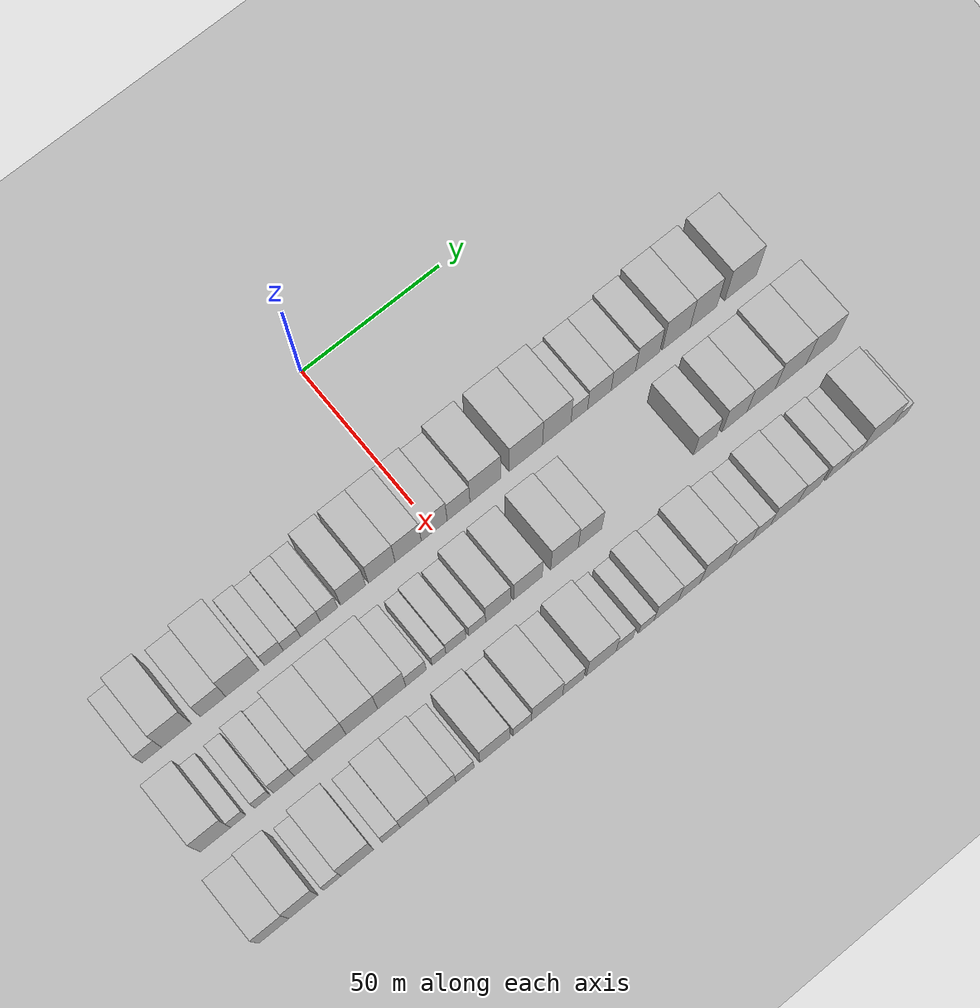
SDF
<sdf version="1.6">
 <world name="default">
  <include><name>ground_plane_1</name><uri>model://HANNAS_ground_plane</uri></include>
  <include>
   <name>ground_plane_2</name>
   <uri>model://HANNAS_ground_plane</uri>
   <pose>100 0 0  0 0 0</pose>
  </include>
  <model name="building_21">
   <static>1</static>
   <pose>50.0000 -98.5561 0 0.000000 0.000000 0.000000</pose>
   <link name="link">
    <pose>0 0 7.50 0 0 0</pose>
    <collision name="collision"><geometry><box><size>20.0000 6.6615 15.0000</size></box></geometry></collision>
    <visual name="visual">
     <cast_shadows>0</cast_shadows>
     <geometry><box><size>20.0000 6.6615 15.0000</size></box></geometry>
     <material>
      <script>
       <uri>model://HANNAS_wall/materials/scripts</uri>
       <uri>model://HANNAS_wall/materials/textures</uri>
       <name>vrc/HANNAS_wall</name>
      </script>
     </material>
    </visual>
   </link>
  </model>
  <model name="building_22">
   <static>1</static>
   <pose>50.0000 -90.1369 0 0.000000 0.000000 0.000000</pose>
   <link name="link">
    <pose>0 0 12.00 0 0 0</pose>
    <collision name="collision"><geometry><box><size>20.0000 10.1769 24.0000</size></box></geometry></collision>
    <visual name="visual">
     <cast_shadows>0</cast_shadows>
     <geometry><box><size>20.0000 10.1769 24.0000</size></box></geometry>
     <material>
      <script>
       <uri>model://HANNAS_wall/materials/scripts</uri>
       <uri>model://HANNAS_wall/materials/textures</uri>
       <name>vrc/HANNAS_wall</name>
      </script>
     </material>
    </visual>
   </link>
  </model>
  <model name="building_23">
   <static>1</static>
   <pose>50.0000 -77.6514 0 0.000000 0.000000 0.000000</pose>
   <link name="link">
    <pose>0 0 9.00 0 0 0</pose>
    <collision name="collision"><geometry><box><size>20.0000 8.7939 18.0000</size></box></geometry></collision>
    <visual name="visual">
     <cast_shadows>0</cast_shadows>
     <geometry><box><size>20.0000 8.7939 18.0000</size></box></geometry>
     <material>
      <script>
       <uri>model://HANNAS_wall/materials/scripts</uri>
       <uri>model://HANNAS_wall/materials/textures</uri>
       <name>vrc/HANNAS_wall</name>
      </script>
     </material>
    </visual>
   </link>
  </model>
  <model name="building_24">
   <static>1</static>
   <pose>50.0000 -67.5716 0 0.000000 0.000000 0.000000</pose>
   <link name="link">
    <pose>0 0 12.00 0 0 0</pose>
    <collision name="collision"><geometry><box><size>20.0000 11.3658 24.0000</size></box></geometry></collision>
    <visual name="visual">
     <cast_shadows>0</cast_shadows>
     <geometry><box><size>20.0000 11.3658 24.0000</size></box></geometry>
     <material>
      <script>
       <uri>model://HANNAS_wall/materials/scripts</uri>
       <uri>model://HANNAS_wall/materials/textures</uri>
       <name>vrc/HANNAS_wall</name>
      </script>
     </material>
    </visual>
   </link>
  </model>
  <model name="building_25">
   <static>1</static>
   <pose>50.0000 -56.5981 0 0.000000 0.000000 0.000000</pose>
   <link name="link">
    <pose>0 0 7.50 0 0 0</pose>
    <collision name="collision"><geometry><box><size>20.0000 6.5810 15.0000</size></box></geometry></collision>
    <visual name="visual">
     <cast_shadows>0</cast_shadows>
     <geometry><box><size>20.0000 6.5810 15.0000</size></box></geometry>
     <material>
      <script>
       <uri>model://HANNAS_wall/materials/scripts</uri>
       <uri>model://HANNAS_wall/materials/textures</uri>
       <name>vrc/HANNAS_wall</name>
      </script>
     </material>
    </visual>
   </link>
  </model>
  <model name="building_26">
   <static>1</static>
   <pose>50.0000 -50.3149 0 0.000000 0.000000 0.000000</pose>
   <link name="link">
    <pose>0 0 6.00 0 0 0</pose>
    <collision name="collision"><geometry><box><size>20.0000 5.9853 12.0000</size></box></geometry></collision>
    <visual name="visual">
     <cast_shadows>0</cast_shadows>
     <geometry><box><size>20.0000 5.9853 12.0000</size></box></geometry>
     <material>
      <script>
       <uri>model://HANNAS_wall/materials/scripts</uri>
       <uri>model://HANNAS_wall/materials/textures</uri>
       <name>vrc/HANNAS_wall</name>
      </script>
     </material>
    </visual>
   </link>
  </model>
  <model name="building_27">
   <static>1</static>
   <pose>50.0000 -43.8723 0 0.000000 0.000000 0.000000</pose>
   <link name="link">
    <pose>0 0 7.50 0 0 0</pose>
    <collision name="collision"><geometry><box><size>20.0000 6.9000 15.0000</size></box></geometry></collision>
    <visual name="visual">
     <cast_shadows>0</cast_shadows>
     <geometry><box><size>20.0000 6.9000 15.0000</size></box></geometry>
     <material>
      <script>
       <uri>model://HANNAS_wall/materials/scripts</uri>
       <uri>model://HANNAS_wall/materials/textures</uri>
       <name>vrc/HANNAS_wall</name>
      </script>
     </material>
    </visual>
   </link>
  </model>
  <model name="building_28">
   <static>1</static>
   <pose>50.0000 -37.3803 0 0.000000 0.000000 0.000000</pose>
   <link name="link">
    <pose>0 0 7.50 0 0 0</pose>
    <collision name="collision"><geometry><box><size>20.0000 6.0840 15.0000</size></box></geometry></collision>
    <visual name="visual">
     <cast_shadows>0</cast_shadows>
     <geometry><box><size>20.0000 6.0840 15.0000</size></box></geometry>
     <material>
      <script>
       <uri>model://HANNAS_wall/materials/scripts</uri>
       <uri>model://HANNAS_wall/materials/textures</uri>
       <name>vrc/HANNAS_wall</name>
      </script>
     </material>
    </visual>
   </link>
  </model>
  <model name="building_29">
   <static>1</static>
   <pose>50.0000 -28.9255 0 0.000000 0.000000 0.000000</pose>
   <link name="link">
    <pose>0 0 10.50 0 0 0</pose>
    <collision name="collision"><geometry><box><size>20.0000 8.8257 21.0000</size></box></geometry></collision>
    <visual name="visual">
     <cast_shadows>0</cast_shadows>
     <geometry><box><size>20.0000 8.8257 21.0000</size></box></geometry>
     <material>
      <script>
       <uri>model://HANNAS_wall/materials/scripts</uri>
       <uri>model://HANNAS_wall/materials/textures</uri>
       <name>vrc/HANNAS_wall</name>
      </script>
     </material>
    </visual>
   </link>
  </model>
  <model name="building_30">
   <static>1</static>
   <pose>50.0000 -18.8104 0 0.000000 0.000000 0.000000</pose>
   <link name="link">
    <pose>0 0 10.50 0 0 0</pose>
    <collision name="collision"><geometry><box><size>20.0000 9.4045 21.0000</size></box></geometry></collision>
    <visual name="visual">
     <cast_shadows>0</cast_shadows>
     <geometry><box><size>20.0000 9.4045 21.0000</size></box></geometry>
     <material>
      <script>
       <uri>model://HANNAS_wall/materials/scripts</uri>
       <uri>model://HANNAS_wall/materials/textures</uri>
       <name>vrc/HANNAS_wall</name>
      </script>
     </material>
    </visual>
   </link>
  </model>
  <model name="building_31">
   <static>1</static>
   <pose>50.0000 -9.4515 0 0.000000 0.000000 0.000000</pose>
   <link name="link">
    <pose>0 0 10.50 0 0 0</pose>
    <collision name="collision"><geometry><box><size>20.0000 9.3133 21.0000</size></box></geometry></collision>
    <visual name="visual">
     <cast_shadows>0</cast_shadows>
     <geometry><box><size>20.0000 9.3133 21.0000</size></box></geometry>
     <material>
      <script>
       <uri>model://HANNAS_wall/materials/scripts</uri>
       <uri>model://HANNAS_wall/materials/textures</uri>
       <name>vrc/HANNAS_wall</name>
      </script>
     </material>
    </visual>
   </link>
  </model>
  <model name="building_32">
   <static>1</static>
   <pose>50.0000 -0.1966 0 0.000000 0.000000 0.000000</pose>
   <link name="link">
    <pose>0 0 10.50 0 0 0</pose>
    <collision name="collision"><geometry><box><size>20.0000 9.1965 21.0000</size></box></geometry></collision>
    <visual name="visual">
     <cast_shadows>0</cast_shadows>
     <geometry><box><size>20.0000 9.1965 21.0000</size></box></geometry>
     <material>
      <script>
       <uri>model://HANNAS_wall/materials/scripts</uri>
       <uri>model://HANNAS_wall/materials/textures</uri>
       <name>vrc/HANNAS_wall</name>
      </script>
     </material>
    </visual>
   </link>
  </model>
  <model name="building_33">
   <static>1</static>
   <pose>50.0000 8.4833 0 0.000000 0.000000 0.000000</pose>
   <link name="link">
    <pose>0 0 9.00 0 0 0</pose>
    <collision name="collision"><geometry><box><size>20.0000 8.1633 18.0000</size></box></geometry></collision>
    <visual name="visual">
     <cast_shadows>0</cast_shadows>
     <geometry><box><size>20.0000 8.1633 18.0000</size></box></geometry>
     <material>
      <script>
       <uri>model://HANNAS_wall/materials/scripts</uri>
       <uri>model://HANNAS_wall/materials/textures</uri>
       <name>vrc/HANNAS_wall</name>
      </script>
     </material>
    </visual>
   </link>
  </model>
  <model name="building_34">
   <static>1</static>
   <pose>50.0000 18.1474 0 0.000000 0.000000 0.000000</pose>
   <link name="link">
    <pose>0 0 12.00 0 0 0</pose>
    <collision name="collision"><geometry><box><size>20.0000 11.1649 24.0000</size></box></geometry></collision>
    <visual name="visual">
     <cast_shadows>0</cast_shadows>
     <geometry><box><size>20.0000 11.1649 24.0000</size></box></geometry>
     <material>
      <script>
       <uri>model://HANNAS_wall/materials/scripts</uri>
       <uri>model://HANNAS_wall/materials/textures</uri>
       <name>vrc/HANNAS_wall</name>
      </script>
     </material>
    </visual>
   </link>
  </model>
  <model name="building_35">
   <static>1</static>
   <pose>50.0000 32.7244 0 0.000000 0.000000 0.000000</pose>
   <link name="link">
    <pose>0 0 12.00 0 0 0</pose>
    <collision name="collision"><geometry><box><size>20.0000 11.9890 24.0000</size></box></geometry></collision>
    <visual name="visual">
     <cast_shadows>0</cast_shadows>
     <geometry><box><size>20.0000 11.9890 24.0000</size></box></geometry>
     <material>
      <script>
       <uri>model://HANNAS_wall/materials/scripts</uri>
       <uri>model://HANNAS_wall/materials/textures</uri>
       <name>vrc/HANNAS_wall</name>
      </script>
     </material>
    </visual>
   </link>
  </model>
  <model name="building_36">
   <static>1</static>
   <pose>50.0000 43.8975 0 0.000000 0.000000 0.000000</pose>
   <link name="link">
    <pose>0 0 12.00 0 0 0</pose>
    <collision name="collision"><geometry><box><size>20.0000 10.3571 24.0000</size></box></geometry></collision>
    <visual name="visual">
     <cast_shadows>0</cast_shadows>
     <geometry><box><size>20.0000 10.3571 24.0000</size></box></geometry>
     <material>
      <script>
       <uri>model://HANNAS_wall/materials/scripts</uri>
       <uri>model://HANNAS_wall/materials/textures</uri>
       <name>vrc/HANNAS_wall</name>
      </script>
     </material>
    </visual>
   </link>
  </model>
  <model name="building_37">
   <static>1</static>
   <pose>50.0000 52.1247 0 0.000000 0.000000 0.000000</pose>
   <link name="link">
    <pose>0 0 7.50 0 0 0</pose>
    <collision name="collision"><geometry><box><size>20.0000 6.0974 15.0000</size></box></geometry></collision>
    <visual name="visual">
     <cast_shadows>0</cast_shadows>
     <geometry><box><size>20.0000 6.0974 15.0000</size></box></geometry>
     <material>
      <script>
       <uri>model://HANNAS_wall/materials/scripts</uri>
       <uri>model://HANNAS_wall/materials/textures</uri>
       <name>vrc/HANNAS_wall</name>
      </script>
     </material>
    </visual>
   </link>
  </model>
  <model name="building_38">
   <static>1</static>
   <pose>50.0000 59.4816 0 0.000000 0.000000 0.000000</pose>
   <link name="link">
    <pose>0 0 9.00 0 0 0</pose>
    <collision name="collision"><geometry><box><size>20.0000 8.6164 18.0000</size></box></geometry></collision>
    <visual name="visual">
     <cast_shadows>0</cast_shadows>
     <geometry><box><size>20.0000 8.6164 18.0000</size></box></geometry>
     <material>
      <script>
       <uri>model://HANNAS_wall/materials/scripts</uri>
       <uri>model://HANNAS_wall/materials/textures</uri>
       <name>vrc/HANNAS_wall</name>
      </script>
     </material>
    </visual>
   </link>
  </model>
  <model name="building_39">
   <static>1</static>
   <pose>50.0000 68.2696 0 0.000000 0.000000 0.000000</pose>
   <link name="link">
    <pose>0 0 9.00 0 0 0</pose>
    <collision name="collision"><geometry><box><size>20.0000 8.9596 18.0000</size></box></geometry></collision>
    <visual name="visual">
     <cast_shadows>0</cast_shadows>
     <geometry><box><size>20.0000 8.9596 18.0000</size></box></geometry>
     <material>
      <script>
       <uri>model://HANNAS_wall/materials/scripts</uri>
       <uri>model://HANNAS_wall/materials/textures</uri>
       <name>vrc/HANNAS_wall</name>
      </script>
     </material>
    </visual>
   </link>
  </model>
  <model name="building_40">
   <static>1</static>
   <pose>50.0000 77.2467 0 0.000000 0.000000 0.000000</pose>
   <link name="link">
    <pose>0 0 10.50 0 0 0</pose>
    <collision name="collision"><geometry><box><size>20.0000 8.9947 21.0000</size></box></geometry></collision>
    <visual name="visual">
     <cast_shadows>0</cast_shadows>
     <geometry><box><size>20.0000 8.9947 21.0000</size></box></geometry>
     <material>
      <script>
       <uri>model://HANNAS_wall/materials/scripts</uri>
       <uri>model://HANNAS_wall/materials/textures</uri>
       <name>vrc/HANNAS_wall</name>
      </script>
     </material>
    </visual>
   </link>
  </model>
  <model name="building_41">
   <static>1</static>
   <pose>50.0000 87.9034 0 0.000000 0.000000 0.000000</pose>
   <link name="link">
    <pose>0 0 12.00 0 0 0</pose>
    <collision name="collision"><geometry><box><size>20.0000 10.3186 24.0000</size></box></geometry></collision>
    <visual name="visual">
     <cast_shadows>0</cast_shadows>
     <geometry><box><size>20.0000 10.3186 24.0000</size></box></geometry>
     <material>
      <script>
       <uri>model://HANNAS_wall/materials/scripts</uri>
       <uri>model://HANNAS_wall/materials/textures</uri>
       <name>vrc/HANNAS_wall</name>
      </script>
     </material>
    </visual>
   </link>
  </model>
  <model name="building_42">
   <static>1</static>
   <pose>50.0000 98.0551 0 0.000000 0.000000 0.000000</pose>
   <link name="link">
    <pose>0 0 12.00 0 0 0</pose>
    <collision name="collision"><geometry><box><size>20.0000 9.9848 24.0000</size></box></geometry></collision>
    <visual name="visual">
     <cast_shadows>0</cast_shadows>
     <geometry><box><size>20.0000 9.9848 24.0000</size></box></geometry>
     <material>
      <script>
       <uri>model://HANNAS_wall/materials/scripts</uri>
       <uri>model://HANNAS_wall/materials/textures</uri>
       <name>vrc/HANNAS_wall</name>
      </script>
     </material>
    </visual>
   </link>
  </model>
  <model name="building_43">
   <static>1</static>
   <pose>50.0000 112.0099 0 0.000000 0.000000 0.000000</pose>
   <link name="link">
    <pose>0 0 12.00 0 0 0</pose>
    <collision name="collision"><geometry><box><size>20.0000 11.9249 24.0000</size></box></geometry></collision>
    <visual name="visual">
     <cast_shadows>0</cast_shadows>
     <geometry><box><size>20.0000 11.9249 24.0000</size></box></geometry>
     <material>
      <script>
       <uri>model://HANNAS_wall/materials/scripts</uri>
       <uri>model://HANNAS_wall/materials/textures</uri>
       <name>vrc/HANNAS_wall</name>
      </script>
     </material>
    </visual>
   </link>
  </model>
  <model name="building_90">
   <static>1</static>
   <pose>79.0000 -99.1103 0 0.000000 0.000000 0.000000</pose>
   <link name="link">
    <pose>0 0 12.00 0 0 0</pose>
    <collision name="collision"><geometry><box><size>20.0000 10.2208 24.0000</size></box></geometry></collision>
    <visual name="visual">
     <cast_shadows>0</cast_shadows>
     <geometry><box><size>20.0000 10.2208 24.0000</size></box></geometry>
     <material>
      <script>
       <uri>model://HANNAS_wall/materials/scripts</uri>
       <uri>model://HANNAS_wall/materials/textures</uri>
       <name>vrc/HANNAS_wall</name>
      </script>
     </material>
    </visual>
   </link>
  </model>
  <model name="building_91">
   <static>1</static>
   <pose>79.0000 -91.3830 0 0.000000 0.000000 0.000000</pose>
   <link name="link">
    <pose>0 0 6.00 0 0 0</pose>
    <collision name="collision"><geometry><box><size>20.0000 5.2338 12.0000</size></box></geometry></collision>
    <visual name="visual">
     <cast_shadows>0</cast_shadows>
     <geometry><box><size>20.0000 5.2338 12.0000</size></box></geometry>
     <material>
      <script>
       <uri>model://HANNAS_wall/materials/scripts</uri>
       <uri>model://HANNAS_wall/materials/textures</uri>
       <name>vrc/HANNAS_wall</name>
      </script>
     </material>
    </visual>
   </link>
  </model>
  <model name="building_92">
   <static>1</static>
   <pose>79.0000 -83.0625 0 0.000000 0.000000 0.000000</pose>
   <link name="link">
    <pose>0 0 6.00 0 0 0</pose>
    <collision name="collision"><geometry><box><size>20.0000 5.4072 12.0000</size></box></geometry></collision>
    <visual name="visual">
     <cast_shadows>0</cast_shadows>
     <geometry><box><size>20.0000 5.4072 12.0000</size></box></geometry>
     <material>
      <script>
       <uri>model://HANNAS_wall/materials/scripts</uri>
       <uri>model://HANNAS_wall/materials/textures</uri>
       <name>vrc/HANNAS_wall</name>
      </script>
     </material>
    </visual>
   </link>
  </model>
  <model name="building_93">
   <static>1</static>
   <pose>79.0000 -75.7413 0 0.000000 0.000000 0.000000</pose>
   <link name="link">
    <pose>0 0 9.00 0 0 0</pose>
    <collision name="collision"><geometry><box><size>20.0000 7.2354 18.0000</size></box></geometry></collision>
    <visual name="visual">
     <cast_shadows>0</cast_shadows>
     <geometry><box><size>20.0000 7.2354 18.0000</size></box></geometry>
     <material>
      <script>
       <uri>model://HANNAS_wall/materials/scripts</uri>
       <uri>model://HANNAS_wall/materials/textures</uri>
       <name>vrc/HANNAS_wall</name>
      </script>
     </material>
    </visual>
   </link>
  </model>
  <model name="building_94">
   <static>1</static>
   <pose>79.0000 -68.9508 0 0.000000 0.000000 0.000000</pose>
   <link name="link">
    <pose>0 0 7.50 0 0 0</pose>
    <collision name="collision"><geometry><box><size>20.0000 6.3456 15.0000</size></box></geometry></collision>
    <visual name="visual">
     <cast_shadows>0</cast_shadows>
     <geometry><box><size>20.0000 6.3456 15.0000</size></box></geometry>
     <material>
      <script>
       <uri>model://HANNAS_wall/materials/scripts</uri>
       <uri>model://HANNAS_wall/materials/textures</uri>
       <name>vrc/HANNAS_wall</name>
      </script>
     </material>
    </visual>
   </link>
  </model>
  <model name="building_95">
   <static>1</static>
   <pose>79.0000 -60.0638 0 0.000000 0.000000 0.000000</pose>
   <link name="link">
    <pose>0 0 12.00 0 0 0</pose>
    <collision name="collision"><geometry><box><size>20.0000 11.4283 24.0000</size></box></geometry></collision>
    <visual name="visual">
     <cast_shadows>0</cast_shadows>
     <geometry><box><size>20.0000 11.4283 24.0000</size></box></geometry>
     <material>
      <script>
       <uri>model://HANNAS_wall/materials/scripts</uri>
       <uri>model://HANNAS_wall/materials/textures</uri>
       <name>vrc/HANNAS_wall</name>
      </script>
     </material>
    </visual>
   </link>
  </model>
  <model name="building_96">
   <static>1</static>
   <pose>79.0000 -48.8568 0 0.000000 0.000000 0.000000</pose>
   <link name="link">
    <pose>0 0 12.00 0 0 0</pose>
    <collision name="collision"><geometry><box><size>20.0000 10.9857 24.0000</size></box></geometry></collision>
    <visual name="visual">
     <cast_shadows>0</cast_shadows>
     <geometry><box><size>20.0000 10.9857 24.0000</size></box></geometry>
     <material>
      <script>
       <uri>model://HANNAS_wall/materials/scripts</uri>
       <uri>model://HANNAS_wall/materials/textures</uri>
       <name>vrc/HANNAS_wall</name>
      </script>
     </material>
    </visual>
   </link>
  </model>
  <model name="building_97">
   <static>1</static>
   <pose>79.0000 -38.4512 0 0.000000 0.000000 0.000000</pose>
   <link name="link">
    <pose>0 0 12.00 0 0 0</pose>
    <collision name="collision"><geometry><box><size>20.0000 9.8255 24.0000</size></box></geometry></collision>
    <visual name="visual">
     <cast_shadows>0</cast_shadows>
     <geometry><box><size>20.0000 9.8255 24.0000</size></box></geometry>
     <material>
      <script>
       <uri>model://HANNAS_wall/materials/scripts</uri>
       <uri>model://HANNAS_wall/materials/textures</uri>
       <name>vrc/HANNAS_wall</name>
      </script>
     </material>
    </visual>
   </link>
  </model>
  <model name="building_98">
   <static>1</static>
   <pose>79.0000 -29.9524 0 0.000000 0.000000 0.000000</pose>
   <link name="link">
    <pose>0 0 7.50 0 0 0</pose>
    <collision name="collision"><geometry><box><size>20.0000 7.1722 15.0000</size></box></geometry></collision>
    <visual name="visual">
     <cast_shadows>0</cast_shadows>
     <geometry><box><size>20.0000 7.1722 15.0000</size></box></geometry>
     <material>
      <script>
       <uri>model://HANNAS_wall/materials/scripts</uri>
       <uri>model://HANNAS_wall/materials/textures</uri>
       <name>vrc/HANNAS_wall</name>
      </script>
     </material>
    </visual>
   </link>
  </model>
  <model name="building_99">
   <static>1</static>
   <pose>79.0000 -21.9246 0 0.000000 0.000000 0.000000</pose>
   <link name="link">
    <pose>0 0 6.00 0 0 0</pose>
    <collision name="collision"><geometry><box><size>20.0000 4.8832 12.0000</size></box></geometry></collision>
    <visual name="visual">
     <cast_shadows>0</cast_shadows>
     <geometry><box><size>20.0000 4.8832 12.0000</size></box></geometry>
     <material>
      <script>
       <uri>model://HANNAS_wall/materials/scripts</uri>
       <uri>model://HANNAS_wall/materials/textures</uri>
       <name>vrc/HANNAS_wall</name>
      </script>
     </material>
    </visual>
   </link>
  </model>
  <model name="building_100">
   <static>1</static>
   <pose>79.0000 -15.9590 0 0.000000 0.000000 0.000000</pose>
   <link name="link">
    <pose>0 0 7.50 0 0 0</pose>
    <collision name="collision"><geometry><box><size>20.0000 7.0480 15.0000</size></box></geometry></collision>
    <visual name="visual">
     <cast_shadows>0</cast_shadows>
     <geometry><box><size>20.0000 7.0480 15.0000</size></box></geometry>
     <material>
      <script>
       <uri>model://HANNAS_wall/materials/scripts</uri>
       <uri>model://HANNAS_wall/materials/textures</uri>
       <name>vrc/HANNAS_wall</name>
      </script>
     </material>
    </visual>
   </link>
  </model>
  <model name="building_101">
   <static>1</static>
   <pose>79.0000 -8.4450 0 0.000000 0.000000 0.000000</pose>
   <link name="link">
    <pose>0 0 6.00 0 0 0</pose>
    <collision name="collision"><geometry><box><size>20.0000 5.9800 12.0000</size></box></geometry></collision>
    <visual name="visual">
     <cast_shadows>0</cast_shadows>
     <geometry><box><size>20.0000 5.9800 12.0000</size></box></geometry>
     <material>
      <script>
       <uri>model://HANNAS_wall/materials/scripts</uri>
       <uri>model://HANNAS_wall/materials/textures</uri>
       <name>vrc/HANNAS_wall</name>
      </script>
     </material>
    </visual>
   </link>
  </model>
  <model name="building_102">
   <static>1</static>
   <pose>79.0000 -0.9993 0 0.000000 0.000000 0.000000</pose>
   <link name="link">
    <pose>0 0 10.50 0 0 0</pose>
    <collision name="collision"><geometry><box><size>20.0000 8.9115 21.0000</size></box></geometry></collision>
    <visual name="visual">
     <cast_shadows>0</cast_shadows>
     <geometry><box><size>20.0000 8.9115 21.0000</size></box></geometry>
     <material>
      <script>
       <uri>model://HANNAS_wall/materials/scripts</uri>
       <uri>model://HANNAS_wall/materials/textures</uri>
       <name>vrc/HANNAS_wall</name>
      </script>
     </material>
    </visual>
   </link>
  </model>
  <model name="building_103">
   <static>1</static>
   <pose>79.0000 9.5612 0 0.000000 0.000000 0.000000</pose>
   <link name="link">
    <pose>0 0 10.50 0 0 0</pose>
    <collision name="collision"><geometry><box><size>20.0000 10.2095 21.0000</size></box></geometry></collision>
    <visual name="visual">
     <cast_shadows>0</cast_shadows>
     <geometry><box><size>20.0000 10.2095 21.0000</size></box></geometry>
     <material>
      <script>
       <uri>model://HANNAS_wall/materials/scripts</uri>
       <uri>model://HANNAS_wall/materials/textures</uri>
       <name>vrc/HANNAS_wall</name>
      </script>
     </material>
    </visual>
   </link>
  </model>
  <model name="building_104">
   <static>1</static>
   <pose>79.0000 22.6184 0 0.000000 0.000000 0.000000</pose>
   <link name="link">
    <pose>0 0 12.00 0 0 0</pose>
    <collision name="collision"><geometry><box><size>20.0000 9.9049 24.0000</size></box></geometry></collision>
    <visual name="visual">
     <cast_shadows>0</cast_shadows>
     <geometry><box><size>20.0000 9.9049 24.0000</size></box></geometry>
     <material>
      <script>
       <uri>model://HANNAS_wall/materials/scripts</uri>
       <uri>model://HANNAS_wall/materials/textures</uri>
       <name>vrc/HANNAS_wall</name>
      </script>
     </material>
    </visual>
   </link>
  </model>
  <model name="building_105">
   <static>1</static>
   <pose>79.0000 31.8277 0 0.000000 0.000000 0.000000</pose>
   <link name="link">
    <pose>0 0 10.50 0 0 0</pose>
    <collision name="collision"><geometry><box><size>20.0000 8.5136 21.0000</size></box></geometry></collision>
    <visual name="visual">
     <cast_shadows>0</cast_shadows>
     <geometry><box><size>20.0000 8.5136 21.0000</size></box></geometry>
     <material>
      <script>
       <uri>model://HANNAS_wall/materials/scripts</uri>
       <uri>model://HANNAS_wall/materials/textures</uri>
       <name>vrc/HANNAS_wall</name>
      </script>
     </material>
    </visual>
   </link>
  </model>
  <model name="building_106">
   <static>1</static>
   <pose>79.0000 73.8918 0 0.000000 0.000000 0.000000</pose>
   <link name="link">
    <pose>0 0 9.00 0 0 0</pose>
    <collision name="collision"><geometry><box><size>20.0000 8.5382 18.0000</size></box></geometry></collision>
    <visual name="visual">
     <cast_shadows>0</cast_shadows>
     <geometry><box><size>20.0000 8.5382 18.0000</size></box></geometry>
     <material>
      <script>
       <uri>model://HANNAS_wall/materials/scripts</uri>
       <uri>model://HANNAS_wall/materials/textures</uri>
       <name>vrc/HANNAS_wall</name>
      </script>
     </material>
    </visual>
   </link>
  </model>
  <model name="building_107">
   <static>1</static>
   <pose>79.0000 84.7986 0 0.000000 0.000000 0.000000</pose>
   <link name="link">
    <pose>0 0 10.50 0 0 0</pose>
    <collision name="collision"><geometry><box><size>20.0000 9.2755 21.0000</size></box></geometry></collision>
    <visual name="visual">
     <cast_shadows>0</cast_shadows>
     <geometry><box><size>20.0000 9.2755 21.0000</size></box></geometry>
     <material>
      <script>
       <uri>model://HANNAS_wall/materials/scripts</uri>
       <uri>model://HANNAS_wall/materials/textures</uri>
       <name>vrc/HANNAS_wall</name>
      </script>
     </material>
    </visual>
   </link>
  </model>
  <model name="building_108">
   <static>1</static>
   <pose>79.0000 94.6247 0 0.000000 0.000000 0.000000</pose>
   <link name="link">
    <pose>0 0 10.50 0 0 0</pose>
    <collision name="collision"><geometry><box><size>20.0000 10.3767 21.0000</size></box></geometry></collision>
    <visual name="visual">
     <cast_shadows>0</cast_shadows>
     <geometry><box><size>20.0000 10.3767 21.0000</size></box></geometry>
     <material>
      <script>
       <uri>model://HANNAS_wall/materials/scripts</uri>
       <uri>model://HANNAS_wall/materials/textures</uri>
       <name>vrc/HANNAS_wall</name>
      </script>
     </material>
    </visual>
   </link>
  </model>
  <model name="building_109">
   <static>1</static>
   <pose>79.0000 105.6357 0 0.000000 0.000000 0.000000</pose>
   <link name="link">
    <pose>0 0 12.00 0 0 0</pose>
    <collision name="collision"><geometry><box><size>20.0000 11.6453 24.0000</size></box></geometry></collision>
    <visual name="visual">
     <cast_shadows>0</cast_shadows>
     <geometry><box><size>20.0000 11.6453 24.0000</size></box></geometry>
     <material>
      <script>
       <uri>model://HANNAS_wall/materials/scripts</uri>
       <uri>model://HANNAS_wall/materials/textures</uri>
       <name>vrc/HANNAS_wall</name>
      </script>
     </material>
    </visual>
   </link>
  </model>
  <model name="building_110">
   <static>1</static>
   <pose>79.0000 117.0232 0 0.000000 0.000000 0.000000</pose>
   <link name="link">
    <pose>0 0 12.00 0 0 0</pose>
    <collision name="collision"><geometry><box><size>20.0000 11.1298 24.0000</size></box></geometry></collision>
    <visual name="visual">
     <cast_shadows>0</cast_shadows>
     <geometry><box><size>20.0000 11.1298 24.0000</size></box></geometry>
     <material>
      <script>
       <uri>model://HANNAS_wall/materials/scripts</uri>
       <uri>model://HANNAS_wall/materials/textures</uri>
       <name>vrc/HANNAS_wall</name>
      </script>
     </material>
    </visual>
   </link>
  </model>
  <model name="building_163">
   <static>1</static>
   <pose>108.0000 -101.7520 0 0.000000 0.000000 0.000000</pose>
   <link name="link">
    <pose>0 0 10.50 0 0 0</pose>
    <collision name="collision"><geometry><box><size>20.0000 10.1727 21.0000</size></box></geometry></collision>
    <visual name="visual">
     <cast_shadows>0</cast_shadows>
     <geometry><box><size>20.0000 10.1727 21.0000</size></box></geometry>
     <material>
      <script>
       <uri>model://HANNAS_wall/materials/scripts</uri>
       <uri>model://HANNAS_wall/materials/textures</uri>
       <name>vrc/HANNAS_wall</name>
      </script>
     </material>
    </visual>
   </link>
  </model>
  <model name="building_164">
   <static>1</static>
   <pose>108.0000 -91.7603 0 0.000000 0.000000 0.000000</pose>
   <link name="link">
    <pose>0 0 12.00 0 0 0</pose>
    <collision name="collision"><geometry><box><size>20.0000 9.8108 24.0000</size></box></geometry></collision>
    <visual name="visual">
     <cast_shadows>0</cast_shadows>
     <geometry><box><size>20.0000 9.8108 24.0000</size></box></geometry>
     <material>
      <script>
       <uri>model://HANNAS_wall/materials/scripts</uri>
       <uri>model://HANNAS_wall/materials/textures</uri>
       <name>vrc/HANNAS_wall</name>
      </script>
     </material>
    </visual>
   </link>
  </model>
  <model name="building_165">
   <static>1</static>
   <pose>108.0000 -81.9226 0 0.000000 0.000000 0.000000</pose>
   <link name="link">
    <pose>0 0 6.00 0 0 0</pose>
    <collision name="collision"><geometry><box><size>20.0000 5.8647 12.0000</size></box></geometry></collision>
    <visual name="visual">
     <cast_shadows>0</cast_shadows>
     <geometry><box><size>20.0000 5.8647 12.0000</size></box></geometry>
     <material>
      <script>
       <uri>model://HANNAS_wall/materials/scripts</uri>
       <uri>model://HANNAS_wall/materials/textures</uri>
       <name>vrc/HANNAS_wall</name>
      </script>
     </material>
    </visual>
   </link>
  </model>
  <model name="building_166">
   <static>1</static>
   <pose>108.0000 -73.4503 0 0.000000 0.000000 0.000000</pose>
   <link name="link">
    <pose>0 0 12.00 0 0 0</pose>
    <collision name="collision"><geometry><box><size>20.0000 11.0799 24.0000</size></box></geometry></collision>
    <visual name="visual">
     <cast_shadows>0</cast_shadows>
     <geometry><box><size>20.0000 11.0799 24.0000</size></box></geometry>
     <material>
      <script>
       <uri>model://HANNAS_wall/materials/scripts</uri>
       <uri>model://HANNAS_wall/materials/textures</uri>
       <name>vrc/HANNAS_wall</name>
      </script>
     </material>
    </visual>
   </link>
  </model>
  <model name="building_167">
   <static>1</static>
   <pose>108.0000 -61.7979 0 0.000000 0.000000 0.000000</pose>
   <link name="link">
    <pose>0 0 7.50 0 0 0</pose>
    <collision name="collision"><geometry><box><size>20.0000 6.2249 15.0000</size></box></geometry></collision>
    <visual name="visual">
     <cast_shadows>0</cast_shadows>
     <geometry><box><size>20.0000 6.2249 15.0000</size></box></geometry>
     <material>
      <script>
       <uri>model://HANNAS_wall/materials/scripts</uri>
       <uri>model://HANNAS_wall/materials/textures</uri>
       <name>vrc/HANNAS_wall</name>
      </script>
     </material>
    </visual>
   </link>
  </model>
  <model name="building_168">
   <static>1</static>
   <pose>108.0000 -53.7412 0 0.000000 0.000000 0.000000</pose>
   <link name="link">
    <pose>0 0 10.50 0 0 0</pose>
    <collision name="collision"><geometry><box><size>20.0000 9.8885 21.0000</size></box></geometry></collision>
    <visual name="visual">
     <cast_shadows>0</cast_shadows>
     <geometry><box><size>20.0000 9.8885 21.0000</size></box></geometry>
     <material>
      <script>
       <uri>model://HANNAS_wall/materials/scripts</uri>
       <uri>model://HANNAS_wall/materials/textures</uri>
       <name>vrc/HANNAS_wall</name>
      </script>
     </material>
    </visual>
   </link>
  </model>
  <model name="building_169">
   <static>1</static>
   <pose>108.0000 -44.1481 0 0.000000 0.000000 0.000000</pose>
   <link name="link">
    <pose>0 0 10.50 0 0 0</pose>
    <collision name="collision"><geometry><box><size>20.0000 9.2976 21.0000</size></box></geometry></collision>
    <visual name="visual">
     <cast_shadows>0</cast_shadows>
     <geometry><box><size>20.0000 9.2976 21.0000</size></box></geometry>
     <material>
      <script>
       <uri>model://HANNAS_wall/materials/scripts</uri>
       <uri>model://HANNAS_wall/materials/textures</uri>
       <name>vrc/HANNAS_wall</name>
      </script>
     </material>
    </visual>
   </link>
  </model>
  <model name="building_170">
   <static>1</static>
   <pose>108.0000 -36.3178 0 0.000000 0.000000 0.000000</pose>
   <link name="link">
    <pose>0 0 7.50 0 0 0</pose>
    <collision name="collision"><geometry><box><size>20.0000 6.3632 15.0000</size></box></geometry></collision>
    <visual name="visual">
     <cast_shadows>0</cast_shadows>
     <geometry><box><size>20.0000 6.3632 15.0000</size></box></geometry>
     <material>
      <script>
       <uri>model://HANNAS_wall/materials/scripts</uri>
       <uri>model://HANNAS_wall/materials/textures</uri>
       <name>vrc/HANNAS_wall</name>
      </script>
     </material>
    </visual>
   </link>
  </model>
  <model name="building_171">
   <static>1</static>
   <pose>108.0000 -25.8871 0 0.000000 0.000000 0.000000</pose>
   <link name="link">
    <pose>0 0 12.00 0 0 0</pose>
    <collision name="collision"><geometry><box><size>20.0000 10.4982 24.0000</size></box></geometry></collision>
    <visual name="visual">
     <cast_shadows>0</cast_shadows>
     <geometry><box><size>20.0000 10.4982 24.0000</size></box></geometry>
     <material>
      <script>
       <uri>model://HANNAS_wall/materials/scripts</uri>
       <uri>model://HANNAS_wall/materials/textures</uri>
       <name>vrc/HANNAS_wall</name>
      </script>
     </material>
    </visual>
   </link>
  </model>
  <model name="building_172">
   <static>1</static>
   <pose>108.0000 -16.3923 0 0.000000 0.000000 0.000000</pose>
   <link name="link">
    <pose>0 0 7.50 0 0 0</pose>
    <collision name="collision"><geometry><box><size>20.0000 6.4912 15.0000</size></box></geometry></collision>
    <visual name="visual">
     <cast_shadows>0</cast_shadows>
     <geometry><box><size>20.0000 6.4912 15.0000</size></box></geometry>
     <material>
      <script>
       <uri>model://HANNAS_wall/materials/scripts</uri>
       <uri>model://HANNAS_wall/materials/textures</uri>
       <name>vrc/HANNAS_wall</name>
      </script>
     </material>
    </visual>
   </link>
  </model>
  <model name="building_173">
   <static>1</static>
   <pose>108.0000 -7.6446 0 0.000000 0.000000 0.000000</pose>
   <link name="link">
    <pose>0 0 12.00 0 0 0</pose>
    <collision name="collision"><geometry><box><size>20.0000 11.0043 24.0000</size></box></geometry></collision>
    <visual name="visual">
     <cast_shadows>0</cast_shadows>
     <geometry><box><size>20.0000 11.0043 24.0000</size></box></geometry>
     <material>
      <script>
       <uri>model://HANNAS_wall/materials/scripts</uri>
       <uri>model://HANNAS_wall/materials/textures</uri>
       <name>vrc/HANNAS_wall</name>
      </script>
     </material>
    </visual>
   </link>
  </model>
  <model name="building_174">
   <static>1</static>
   <pose>108.0000 1.6222 0 0.000000 0.000000 0.000000</pose>
   <link name="link">
    <pose>0 0 9.00 0 0 0</pose>
    <collision name="collision"><geometry><box><size>20.0000 7.5294 18.0000</size></box></geometry></collision>
    <visual name="visual">
     <cast_shadows>0</cast_shadows>
     <geometry><box><size>20.0000 7.5294 18.0000</size></box></geometry>
     <material>
      <script>
       <uri>model://HANNAS_wall/materials/scripts</uri>
       <uri>model://HANNAS_wall/materials/textures</uri>
       <name>vrc/HANNAS_wall</name>
      </script>
     </material>
    </visual>
   </link>
  </model>
  <model name="building_175">
   <static>1</static>
   <pose>108.0000 11.6418 0 0.000000 0.000000 0.000000</pose>
   <link name="link">
    <pose>0 0 12.00 0 0 0</pose>
    <collision name="collision"><geometry><box><size>20.0000 10.5098 24.0000</size></box></geometry></collision>
    <visual name="visual">
     <cast_shadows>0</cast_shadows>
     <geometry><box><size>20.0000 10.5098 24.0000</size></box></geometry>
     <material>
      <script>
       <uri>model://HANNAS_wall/materials/scripts</uri>
       <uri>model://HANNAS_wall/materials/textures</uri>
       <name>vrc/HANNAS_wall</name>
      </script>
     </material>
    </visual>
   </link>
  </model>
  <model name="building_176">
   <static>1</static>
   <pose>108.0000 19.9623 0 0.000000 0.000000 0.000000</pose>
   <link name="link">
    <pose>0 0 7.50 0 0 0</pose>
    <collision name="collision"><geometry><box><size>20.0000 6.1311 15.0000</size></box></geometry></collision>
    <visual name="visual">
     <cast_shadows>0</cast_shadows>
     <geometry><box><size>20.0000 6.1311 15.0000</size></box></geometry>
     <material>
      <script>
       <uri>model://HANNAS_wall/materials/scripts</uri>
       <uri>model://HANNAS_wall/materials/textures</uri>
       <name>vrc/HANNAS_wall</name>
      </script>
     </material>
    </visual>
   </link>
  </model>
  <model name="building_177">
   <static>1</static>
   <pose>108.0000 27.7673 0 0.000000 0.000000 0.000000</pose>
   <link name="link">
    <pose>0 0 6.00 0 0 0</pose>
    <collision name="collision"><geometry><box><size>20.0000 5.4790 12.0000</size></box></geometry></collision>
    <visual name="visual">
     <cast_shadows>0</cast_shadows>
     <geometry><box><size>20.0000 5.4790 12.0000</size></box></geometry>
     <material>
      <script>
       <uri>model://HANNAS_wall/materials/scripts</uri>
       <uri>model://HANNAS_wall/materials/textures</uri>
       <name>vrc/HANNAS_wall</name>
      </script>
     </material>
    </visual>
   </link>
  </model>
  <model name="building_178">
   <static>1</static>
   <pose>108.0000 34.9035 0 0.000000 0.000000 0.000000</pose>
   <link name="link">
    <pose>0 0 10.50 0 0 0</pose>
    <collision name="collision"><geometry><box><size>20.0000 8.7935 21.0000</size></box></geometry></collision>
    <visual name="visual">
     <cast_shadows>0</cast_shadows>
     <geometry><box><size>20.0000 8.7935 21.0000</size></box></geometry>
     <material>
      <script>
       <uri>model://HANNAS_wall/materials/scripts</uri>
       <uri>model://HANNAS_wall/materials/textures</uri>
       <name>vrc/HANNAS_wall</name>
      </script>
     </material>
    </visual>
   </link>
  </model>
  <model name="building_179">
   <static>1</static>
   <pose>108.0000 43.2369 0 0.000000 0.000000 0.000000</pose>
   <link name="link">
    <pose>0 0 9.00 0 0 0</pose>
    <collision name="collision"><geometry><box><size>20.0000 7.8732 18.0000</size></box></geometry></collision>
    <visual name="visual">
     <cast_shadows>0</cast_shadows>
     <geometry><box><size>20.0000 7.8732 18.0000</size></box></geometry>
     <material>
      <script>
       <uri>model://HANNAS_wall/materials/scripts</uri>
       <uri>model://HANNAS_wall/materials/textures</uri>
       <name>vrc/HANNAS_wall</name>
      </script>
     </material>
    </visual>
   </link>
  </model>
  <model name="building_180">
   <static>1</static>
   <pose>108.0000 52.3291 0 0.000000 0.000000 0.000000</pose>
   <link name="link">
    <pose>0 0 12.00 0 0 0</pose>
    <collision name="collision"><geometry><box><size>20.0000 10.3113 24.0000</size></box></geometry></collision>
    <visual name="visual">
     <cast_shadows>0</cast_shadows>
     <geometry><box><size>20.0000 10.3113 24.0000</size></box></geometry>
     <material>
      <script>
       <uri>model://HANNAS_wall/materials/scripts</uri>
       <uri>model://HANNAS_wall/materials/textures</uri>
       <name>vrc/HANNAS_wall</name>
      </script>
     </material>
    </visual>
   </link>
  </model>
  <model name="building_181">
   <static>1</static>
   <pose>108.0000 61.7816 0 0.000000 0.000000 0.000000</pose>
   <link name="link">
    <pose>0 0 9.00 0 0 0</pose>
    <collision name="collision"><geometry><box><size>20.0000 8.5937 18.0000</size></box></geometry></collision>
    <visual name="visual">
     <cast_shadows>0</cast_shadows>
     <geometry><box><size>20.0000 8.5937 18.0000</size></box></geometry>
     <material>
      <script>
       <uri>model://HANNAS_wall/materials/scripts</uri>
       <uri>model://HANNAS_wall/materials/textures</uri>
       <name>vrc/HANNAS_wall</name>
      </script>
     </material>
    </visual>
   </link>
  </model>
  <model name="building_182">
   <static>1</static>
   <pose>108.0000 69.4358 0 0.000000 0.000000 0.000000</pose>
   <link name="link">
    <pose>0 0 7.50 0 0 0</pose>
    <collision name="collision"><geometry><box><size>20.0000 6.7146 15.0000</size></box></geometry></collision>
    <visual name="visual">
     <cast_shadows>0</cast_shadows>
     <geometry><box><size>20.0000 6.7146 15.0000</size></box></geometry>
     <material>
      <script>
       <uri>model://HANNAS_wall/materials/scripts</uri>
       <uri>model://HANNAS_wall/materials/textures</uri>
       <name>vrc/HANNAS_wall</name>
      </script>
     </material>
    </visual>
   </link>
  </model>
  <model name="building_183">
   <static>1</static>
   <pose>108.0000 77.8434 0 0.000000 0.000000 0.000000</pose>
   <link name="link">
    <pose>0 0 10.50 0 0 0</pose>
    <collision name="collision"><geometry><box><size>20.0000 10.1006 21.0000</size></box></geometry></collision>
    <visual name="visual">
     <cast_shadows>0</cast_shadows>
     <geometry><box><size>20.0000 10.1006 21.0000</size></box></geometry>
     <material>
      <script>
       <uri>model://HANNAS_wall/materials/scripts</uri>
       <uri>model://HANNAS_wall/materials/textures</uri>
       <name>vrc/HANNAS_wall</name>
      </script>
     </material>
    </visual>
   </link>
  </model>
  <model name="building_184">
   <static>1</static>
   <pose>108.0000 87.0702 0 0.000000 0.000000 0.000000</pose>
   <link name="link">
    <pose>0 0 9.00 0 0 0</pose>
    <collision name="collision"><geometry><box><size>20.0000 8.3531 18.0000</size></box></geometry></collision>
    <visual name="visual">
     <cast_shadows>0</cast_shadows>
     <geometry><box><size>20.0000 8.3531 18.0000</size></box></geometry>
     <material>
      <script>
       <uri>model://HANNAS_wall/materials/scripts</uri>
       <uri>model://HANNAS_wall/materials/textures</uri>
       <name>vrc/HANNAS_wall</name>
      </script>
     </material>
    </visual>
   </link>
  </model>
  <model name="building_185">
   <static>1</static>
   <pose>108.0000 96.9410 0 0.000000 0.000000 0.000000</pose>
   <link name="link">
    <pose>0 0 7.50 0 0 0</pose>
    <collision name="collision"><geometry><box><size>20.0000 7.3885 15.0000</size></box></geometry></collision>
    <visual name="visual">
     <cast_shadows>0</cast_shadows>
     <geometry><box><size>20.0000 7.3885 15.0000</size></box></geometry>
     <material>
      <script>
       <uri>model://HANNAS_wall/materials/scripts</uri>
       <uri>model://HANNAS_wall/materials/textures</uri>
       <name>vrc/HANNAS_wall</name>
      </script>
     </material>
    </visual>
   </link>
  </model>
  <model name="building_186">
   <static>1</static>
   <pose>108.0000 103.5753 0 0.000000 0.000000 0.000000</pose>
   <link name="link">
    <pose>0 0 6.00 0 0 0</pose>
    <collision name="collision"><geometry><box><size>20.0000 5.8801 12.0000</size></box></geometry></collision>
    <visual name="visual">
     <cast_shadows>0</cast_shadows>
     <geometry><box><size>20.0000 5.8801 12.0000</size></box></geometry>
     <material>
      <script>
       <uri>model://HANNAS_wall/materials/scripts</uri>
       <uri>model://HANNAS_wall/materials/textures</uri>
       <name>vrc/HANNAS_wall</name>
      </script>
     </material>
    </visual>
   </link>
  </model>
  <model name="building_187">
   <static>1</static>
   <pose>108.0000 112.4848 0 0.000000 0.000000 0.000000</pose>
   <link name="link">
    <pose>0 0 12.00 0 0 0</pose>
    <collision name="collision"><geometry><box><size>20.0000 11.9387 24.0000</size></box></geometry></collision>
    <visual name="visual">
     <cast_shadows>0</cast_shadows>
     <geometry><box><size>20.0000 11.9387 24.0000</size></box></geometry>
     <material>
      <script>
       <uri>model://HANNAS_wall/materials/scripts</uri>
       <uri>model://HANNAS_wall/materials/textures</uri>
       <name>vrc/HANNAS_wall</name>
      </script>
     </material>
    </visual>
   </link>
  </model>
  <model name="building_188">
   <static>1</static>
   <pose>108.0000 120.9768 0 0.000000 0.000000 0.000000</pose>
   <link name="link">
    <pose>0 0 6.00 0 0 0</pose>
    <collision name="collision"><geometry><box><size>20.0000 5.0454 12.0000</size></box></geometry></collision>
    <visual name="visual">
     <cast_shadows>0</cast_shadows>
     <geometry><box><size>20.0000 5.0454 12.0000</size></box></geometry>
     <material>
      <script>
       <uri>model://HANNAS_wall/materials/scripts</uri>
       <uri>model://HANNAS_wall/materials/textures</uri>
       <name>vrc/HANNAS_wall</name>
      </script>
     </material>
    </visual>
   </link>
  </model>
 </world>
</sdf>
